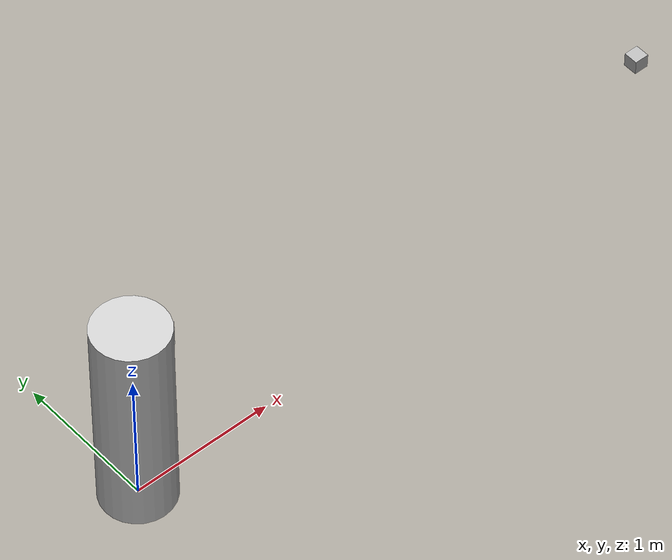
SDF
<?xml version="1.0" ?>
<sdf version="1.7">
    <world name="default">
        <!-- Physics -->
        <plugin
            filename="libignition-gazebo-physics-system.so"
            name="ignition::gazebo::systems::Physics"></plugin>
        <!-- Forwards simulation state to the GUI -->
        <plugin
            filename="libignition-gazebo-scene-broadcaster-system.so"
            name="ignition::gazebo::systems::SceneBroadcaster"></plugin>
        <!-- Processes user commands, like translate and create -->
        <plugin
            filename="libignition-gazebo-user-commands-system.so"
            name="ignition::gazebo::systems::UserCommands"></plugin>
        <!-- Generates rendering sensor data -->
        <plugin
            filename="libignition-gazebo-sensors-system.so"
            name="ignition::gazebo::systems::Sensors">
            <!-- ogre2 not working with just the MESA_GL_VERSION_OVERRIDE=3.3 trick -->
            <render_engine>ogre2</render_engine>
        </plugin>
        <plugin filename="libignition-gazebo-imu-system.so"
        		name="ignition::gazebo::systems::Imu"></plugin>
        <!--light-->
        <model name="box1">
            <static>1</static>
            <pose>0 0 0 0 0 0</pose>
            <link name='link'>
                <pose>0 0 0.75 0 0 0</pose>
                <visual name='visual'>
                    <geometry>
                        <cylinder>
                            <radius>0.25</radius>
                            <length>1.5</length>
                        </cylinder>
                    </geometry>
                    <material>
                        <ambient>0.8 0.8 0.8 1</ambient>
                        <diffuse>0.8 0.8 0.8 1</diffuse>
                        <specular>1 1 1 1</specular>
                    </material>
                </visual>
                <visual name='visual2'>
                    <pose>0.25 0 0.5 0 0 0</pose>
                    <geometry>
                        <box>
                            <size>0.1 0.05 0.2</size>
                        </box>
                    </geometry>
                    <material>
                        <ambient>1 1 1 1</ambient>
                        <diffuse>1 1 1 1</diffuse>
                        <specular>1 1 1 1</specular>
                    </material>
                </visual>
            </link>

            <plugin filename="LightIndicator" name="ignition::gazebo::systems::LightIndicator">
                <controller_name>hp_indicator</controller_name>
                <link_visual>link/visual2</link_visual>
                <initial_color>red</initial_color>
            </plugin>
        </model>

        <model name="camera">
            <static>true</static>
            <pose>4 0 1.0 0 0.0 3.14159</pose>
            <link name="link">
                <pose>0.05 0.05 0.05 0 0 0</pose>
                <collision name="collision">
                    <geometry>
                        <box>
                            <size>0.1 0.1 0.1</size>
                        </box>
                    </geometry>
                </collision>
                <visual name="visual">
                    <geometry>
                        <box>
                            <size>0.1 0.1 0.1</size>
                        </box>
                    </geometry>
                </visual>
                <sensor name="camera" type="camera">
                    <camera>
                        <horizontal_fov>1.047</horizontal_fov>
                        <image>
                            <width>1280</width>
                            <height>800</height>
                        </image>
                        <clip>
                            <near>0.1</near>
                            <far>100</far>
                        </clip>
                    </camera>
                    <always_on>1</always_on>
                    <update_rate>30</update_rate>
                    <visualize>true</visualize>
                    <topic>camera</topic>
                </sensor>
            </link>
        </model>
    </world>
</sdf>
